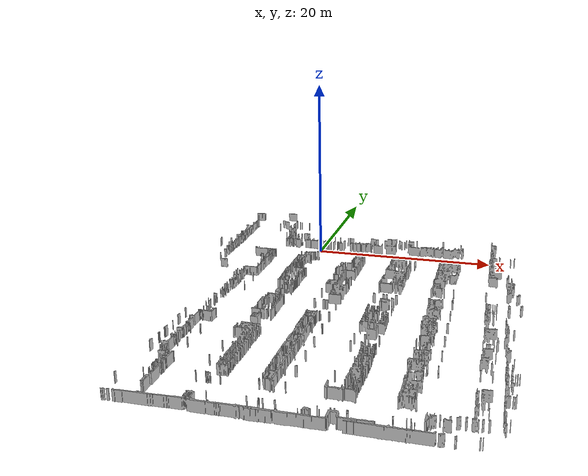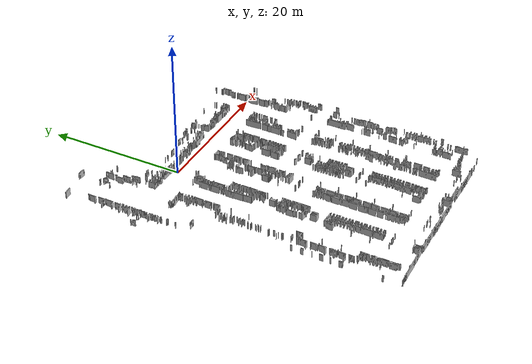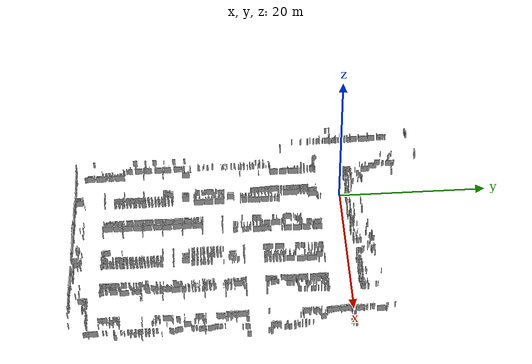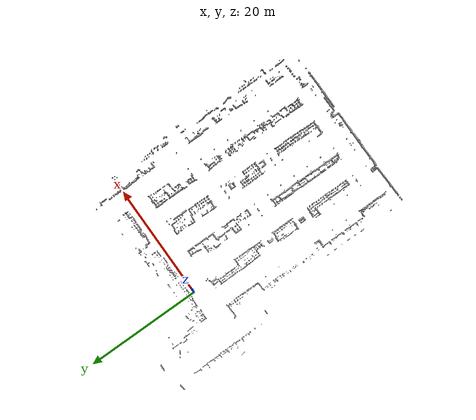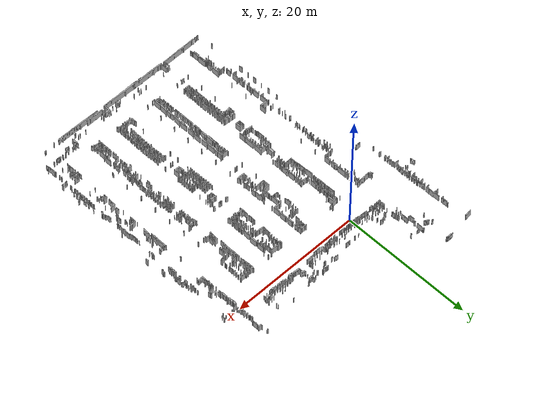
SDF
<?xml version="1.0"?>
<sdf version="1.6">
  <model name="map_walls">
    <static>true</static>
    <link name="walls">
      <collision name="collision">
        <geometry>
          <mesh>
            <uri>model://map_walls/meshes/map_walls.stl</uri>
          </mesh>
        </geometry>
      </collision>
      <visual name="visual">
        <geometry>
          <mesh>
            <uri>model://map_walls/meshes/map_walls.stl</uri>
          </mesh>
        </geometry>
        <material>
          <ambient>0.5 0.5 0.5 1</ambient>
          <diffuse>0.7 0.7 0.7 1</diffuse>
        </material>
      </visual>
    </link>
  </model>
</sdf>
